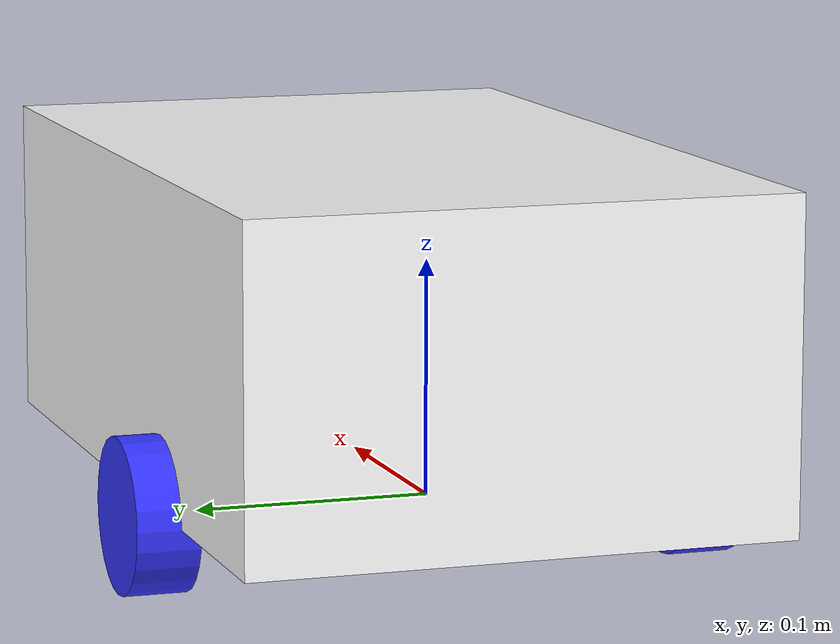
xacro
<?xml version="1.0"?>
<robot xmlns:xacro="http://www.ros.org/wiki/xacro" >

    <xacro:include filename="inertial_macros.xacro" />

    <material name="white">
        <color rgba="1 1 1 1" />
    </material>

    <material name="orange">
        <color rgba="1 0.3 0.1 1"/>
    </material>

    <material name="blue">
        <color rgba="0.2 0.2 1 1"/>
    </material>

    <material name="black">
        <color rgba="0 0 0 1"/>
    </material>

    <material name="red">
        <color rgba="1 0 0 1"/>
    </material>

    <!-- BASE LINK -->

    <link name="base_link">

    </link>

    <!-- CHASSIS LINK -->

    <joint name="chassis_joint" type="fixed">
        <parent link="base_link"/>
        <child link="chassis"/>
        <origin xyz="-0.125 0 0"/>
    </joint>

    <link name="chassis">
        <visual>
            <origin xyz="0.185 0 0.07"/>
            <geometry>
                <box size="0.370 0.230 0.140"/>
            </geometry>
            <material name="white"/>
        </visual>

        <collision>
            <origin xyz="0.185 0 0.07"/>
            <geometry>
                <box size="0.370 0.230 0.140"/>
            </geometry>
        </collision>

        <xacro:inertial_box mass = "1.4" x = "0.370" y = "0.230" z = "0.140">
            <origin xyz="0.185 0 0.07" rpy = "0 0 0"/>
        </xacro:inertial_box>
    </link>

    <gazebo reference="chassis">
        <material>Gazebo/White</material>
    </gazebo>

    <!-- LEFT WHEEL LINK -->

    <joint name="left_wheel_joint" type="continuous">
        <parent link="base_link"/>
        <child link="left_wheel"/>
        <origin xyz="0 0.120 0" rpy="-${pi/2} 0 0" />
        <axis xyz="0 0 1"/>
    </joint>

    <link name="left_wheel">
        <visual>
            <geometry>
                <cylinder radius="0.033" length="0.027"/>
            </geometry>
            <material name="blue"/>
        </visual>
        <collision>
            <geometry>
                <cylinder radius="0.033" length="0.027"/>
            </geometry>
        </collision>
        <xacro:inertial_cylinder mass = "0.035" length = "0.027" radius = "0.033">
            <origin xyz="0 0 0" rpy = "0 0 0"/>
        </xacro:inertial_cylinder>
    </link>

    <gazebo reference="left_wheel">
        <material>Gazebo/Blue</material>
    </gazebo>

    <!-- RIGHT WHEEL LINK -->

    <joint name="right_wheel_joint" type="continuous">
        <parent link="base_link"/>
        <child link="right_wheel"/>
        <origin xyz="0 -0.120 0" rpy="${pi/2} 0 0" />
        <axis xyz="0 0 -1"/>
    </joint>

    <link name="right_wheel">
        <visual>
            <geometry>
                <cylinder radius="0.033" length="0.027"/>
            </geometry>
            <material name="blue"/>
        </visual>
        <collision>
            <geometry>
                <cylinder radius="0.033" length="0.027"/>
            </geometry>
        </collision>
        <xacro:inertial_cylinder mass = "0.035" length = "0.027" radius = "0.033">
            <origin xyz="0 0 0" rpy = "0 0 0"/>
        </xacro:inertial_cylinder>
    </link>

    <gazebo reference="right_wheel">
        <material>Gazebo/Blue</material>
    </gazebo>

    <!-- CASTOR WHEEL LINK -->
    <joint name="castor_wheel_joint" type="fixed">
        <parent link="chassis"/>
        <child link="castor_wheel"/>
        <origin xyz="0.270 0 0"/>
    </joint>

    <link name="castor_wheel">
        <visual>
            <geometry>
                <sphere radius="0.033" />
            </geometry>
            <material name="black"/>
        </visual>
        <collision>
            <geometry>
                <sphere radius="0.033" />
            </geometry>
        </collision>
        <xacro:inertial_sphere mass = "0.030" radius = "0.033">
            <origin xyz="0 0 0" rpy = "0 0 0"/>
        </xacro:inertial_sphere>
    </link>

    <gazebo reference="castor_wheel">
        <material>Gazebo/Black</material>
        <mu1 value="0.00001"/>
        <mu2 value="0.00001"/>
    </gazebo>

</robot>
